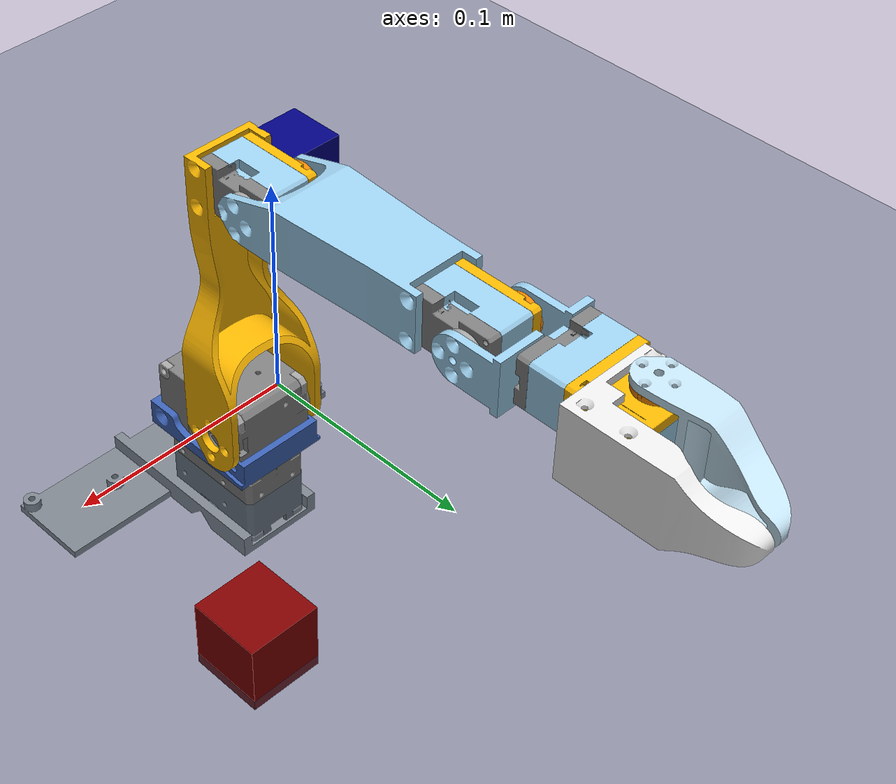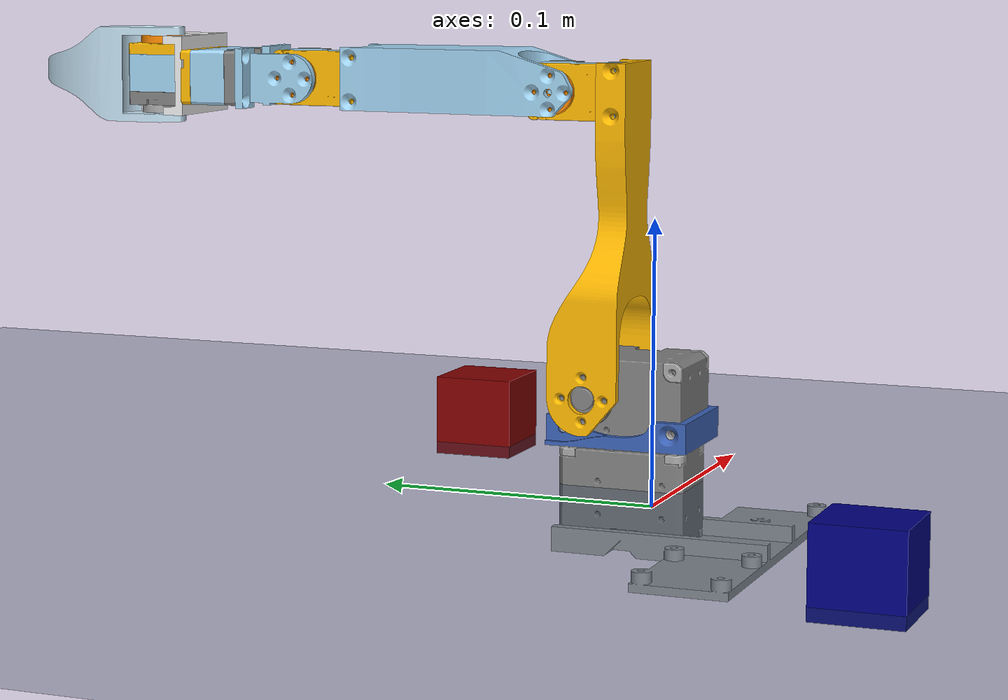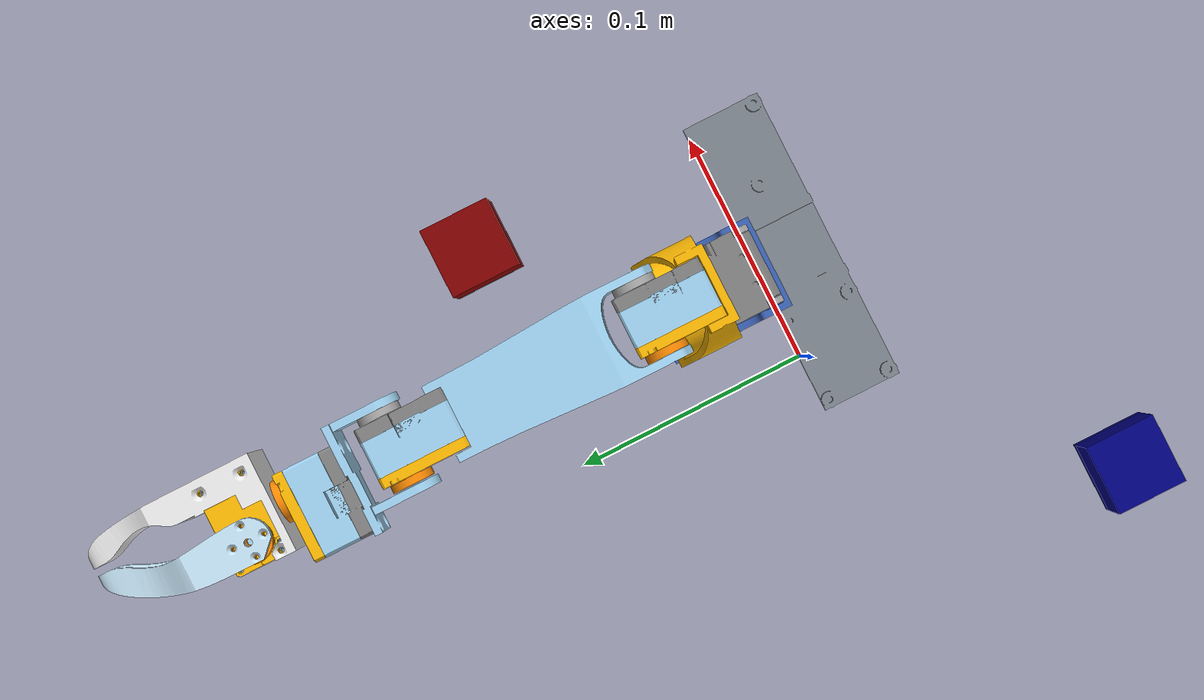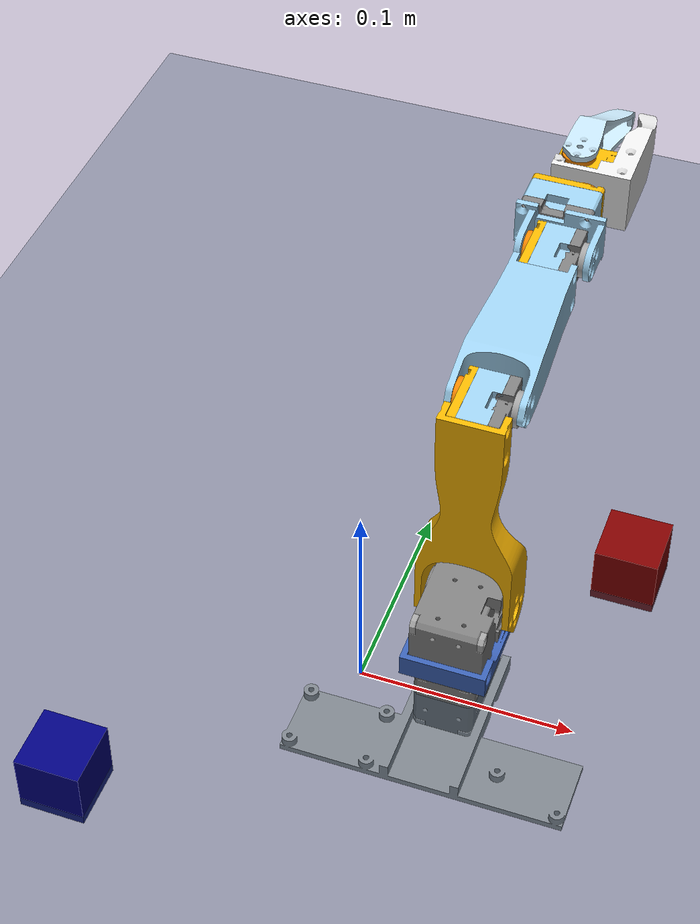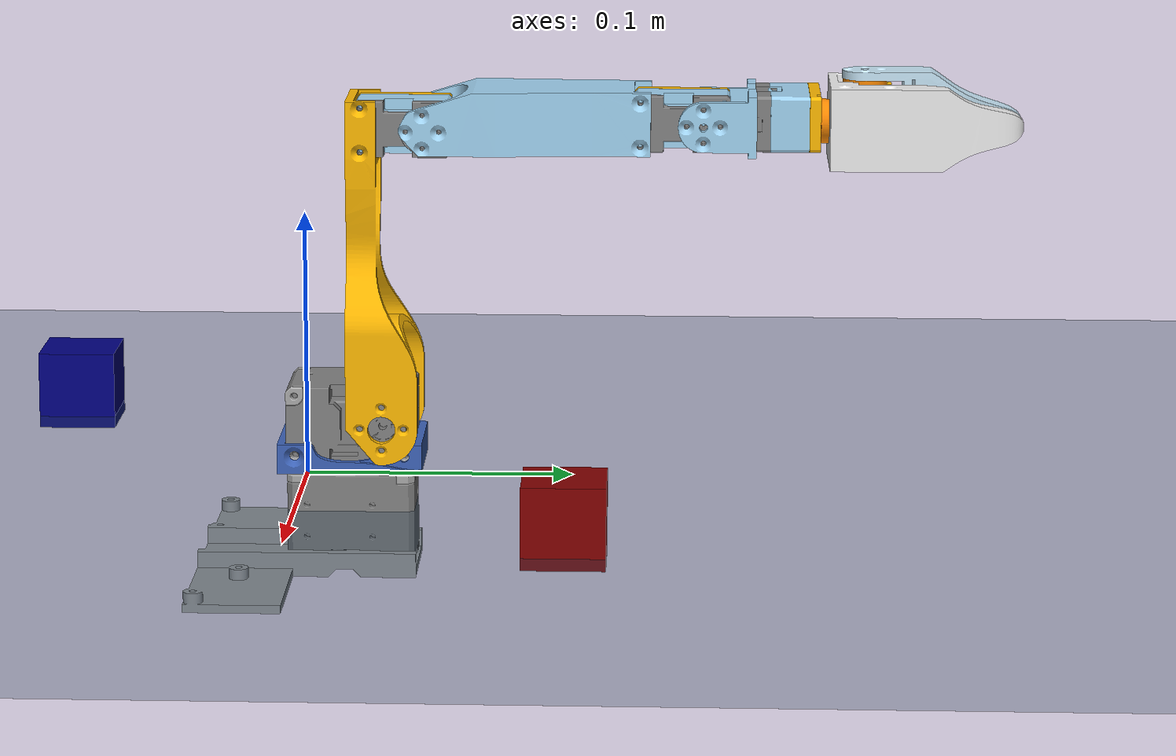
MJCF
<mujoco model="bd1 scene">
	<option timestep="0.005"/>

	<compiler angle="radian" autolimits="true"/>

	<asset>
		<mesh name="base" file="base.stl"/>
		<mesh name="dc11_a01_spacer_dummy" file="dc11_a01_spacer_dummy.stl"/>
		<mesh name="dc11_a01_dummy" file="dc11_a01_dummy.stl"/>
		<mesh name="rotation_connector" file="rotation_connector.stl"/>
		<mesh name="arm_connector" file="arm_connector.stl"/>
		<mesh name="dc15_a01_horn_idle2_dummy" file="dc15_a01_horn_idle2_dummy.stl"/>
		<mesh name="dc15_a01_case_m_dummy" file="dc15_a01_case_m_dummy.stl"/>
		<mesh name="dc15_a01_case_f_dummy" file="dc15_a01_case_f_dummy.stl"/>
		<mesh name="dc15_a01_horn_dummy" file="dc15_a01_horn_dummy.stl"/>
		<mesh name="dc15_a01_case_b_dummy" file="dc15_a01_case_b_dummy.stl"/>
		<mesh name="connector" file="connector.stl"/>
		<mesh name="shoulder_rotation" file="shoulder_rotation.stl"/>
		<mesh name="static_side" file="static_side.stl"/>
		<mesh name="moving_side" file="moving_side.stl"/>
		<texture type="skybox" builtin="gradient" rgb1="0.3 0.5 0.7" rgb2="0 0 0" width="512" height="3072" />
		<texture type="2d" name="groundplane" builtin="checker" mark="edge" rgb1="0.2 0.3 0.4" rgb2="0.1 0.2 0.3" markrgb="0.8 0.8 0.8" width="300" height="300" />
		<material name="groundplane" texture="groundplane" texuniform="true" texrepeat="5 5" reflectance="0.2" />
	</asset>

	<visual>
		<headlight diffuse="0.6 0.6 0.6" ambient="0.3 0.3 0.3" specular="0 0 0" />
		<rgba haze="0.15 0.25 0.35 1" />
		<global azimuth="150" elevation="-20" offheight="640" />
	</visual>

	<worldbody>
		<light pos="0 0 3" dir="0 0 -1" directional="false" />
		<body name="floor">
			<geom pos="0 0 0" name="floor" size="0 0 .125" type="plane" material="groundplane" conaffinity="1" contype="1" />
		</body>

		<body name="cube_red" pos="0.1 0.1 0.01">
			<freejoint name="cube_red"/>
			<inertial pos="0 0 0" mass="0.1" diaginertia="0.00001125 0.00001125 0.00001125"/>
			<geom friction="0.5" condim="3" pos="0 0 0" size="0.015 0.015 0.015" type="box" name="cube_red" rgba="0.5 0 0 1" priority="1"/>
		</body>

		<body name="cube_blue" pos="-0.1 -0.1 0.01">
			<freejoint name="cube_blue"/>
			<inertial pos="0 0 0" mass="0.1" diaginertia="0.00001125 0.00001125 0.00001125"/>
			<geom friction="0.5" condim="3" pos="0 0 0" size="0.015 0.015 0.015" type="box" name="cube_blue" rgba="0 0 0.5 1" priority="1"/>
		</body>

		<camera name="camera_front" pos="0.049 0.888 0.317" xyaxes="-0.998 0.056 -0.000 -0.019 -0.335 0.942"/>
		<camera name="camera_top" pos="0 0 1" euler="0 0 0" mode="fixed"/>
		<camera name="camera_vizu" pos="-0.1 0.6 0.3" quat="-0.15 -0.1 0.6 1"/>

		<geom pos="0.0401555 -0.0353754 -0.0242427" type="mesh" rgba="0.647059 0.647059 0.647059 1" mesh="base"/>
		<geom pos="0.0511555 0.0406246 0.0099573" quat="0 0 0 1" type="mesh" rgba="0.647059 0.647059 0.647059 1" mesh="dc11_a01_spacer_dummy"/>
		<geom pos="0.0291555 0.000624643 0.0099573" quat="0 0 0 1" type="mesh" rgba="0.647059 0.647059 0.647059 1" mesh="dc11_a01_spacer_dummy"/>
		<geom pos="0.0511555 0.000624643 -0.0184427" quat="0 0 1 0" type="mesh" rgba="0.647059 0.647059 0.647059 1" mesh="dc11_a01_spacer_dummy"/>
		<geom pos="0.0401555 0.0326246 -0.0042427" type="mesh" rgba="0.498039 0.498039 0.498039 1" mesh="dc11_a01_dummy"/>
		<geom pos="0.0291555 0.000624643 -0.0184427" quat="0 0.707107 0.707107 0" type="mesh" rgba="0.647059 0.647059 0.647059 1" mesh="dc11_a01_spacer_dummy"/>
		<geom pos="0.0291555 0.0406246 0.0099573" quat="0.707107 0 0 -0.707107" type="mesh" rgba="0.647059 0.647059 0.647059 1" mesh="dc11_a01_spacer_dummy"/>
		<geom pos="0.0511555 0.0406246 -0.0184427" quat="0 0.707107 -0.707107 0" type="mesh" rgba="0.647059 0.647059 0.647059 1" mesh="dc11_a01_spacer_dummy"/>
		<geom pos="0.0291555 0.0406246 -0.0184427" quat="0 -1 0 0" type="mesh" rgba="0.647059 0.647059 0.647059 1" mesh="dc11_a01_spacer_dummy"/>
		<geom pos="0.0511555 0.000624643 0.0099573" quat="0.707107 0 0 0.707107" type="mesh" rgba="0.647059 0.647059 0.647059 1" mesh="dc11_a01_spacer_dummy"/>

		<body name="pitch1_assembly" pos="0.0401555 0.0326246 0.0166573">

			<inertial pos="-0.000767103 -0.0121505 0.0134241" quat="0.498429 0.53272 -0.473938 0.493113" mass="0.0606831" diaginertia="1.86261e-05 1.72746e-05 1.11693e-05"/>
			<joint name="shoulder_pan_joint" pos="0 0 0" axis="0 0 1" range="-3.14159 3.14159" damping="0.1" actuatorfrcrange="-0.5 0.5" actuatorfrclimited="true"/>
			<geom pos="0 0 -0.0209" type="mesh" rgba="0.231373 0.380392 0.705882 1" mesh="rotation_connector"/>
			<geom pos="-0.014 0.008 0.0264" quat="0 -0.707107 0 0.707107" type="mesh" rgba="0.647059 0.647059 0.647059 1" mesh="dc11_a01_spacer_dummy"/>
			<geom pos="-0.014 -0.032 0.0044" quat="0 -0.707107 0 0.707107" type="mesh" rgba="0.647059 0.647059 0.647059 1" mesh="dc11_a01_spacer_dummy"/>
			<geom pos="0.0144 -0.032 0.0264" quat="0.707107 0 0.707107 0" type="mesh" rgba="0.647059 0.647059 0.647059 1" mesh="dc11_a01_spacer_dummy"/>
			<geom pos="0.0002 0 0.0154" quat="0.707107 0 -0.707107 0" type="mesh" rgba="0.498039 0.498039 0.498039 1" mesh="dc11_a01_dummy"/>
			<geom pos="0.0144 -0.032 0.0044" quat="0.5 0.5 0.5 0.5" type="mesh" rgba="0.647059 0.647059 0.647059 1" mesh="dc11_a01_spacer_dummy"/>
			<geom pos="-0.014 0.008 0.0044" quat="0.5 0.5 -0.5 -0.5" type="mesh" rgba="0.647059 0.647059 0.647059 1" mesh="dc11_a01_spacer_dummy"/>
			<geom pos="0.0144 0.008 0.0264" quat="0.5 -0.5 0.5 -0.5" type="mesh" rgba="0.647059 0.647059 0.647059 1" mesh="dc11_a01_spacer_dummy"/>
			<geom pos="0.0144 0.008 0.0044" quat="0 0.707107 0 0.707107" type="mesh" rgba="0.647059 0.647059 0.647059 1" mesh="dc11_a01_spacer_dummy"/>
			<geom pos="-0.014 -0.032 0.0264" quat="0.5 -0.5 -0.5 0.5" type="mesh" rgba="0.647059 0.647059 0.647059 1" mesh="dc11_a01_spacer_dummy"/>

			<body name="pitch2_assembly" pos="-0.0188 0 0.0154" quat="0 0.707107 0 0.707107">

				<inertial pos="0.0766242 -0.00031229 0.0187402" quat="0.52596 0.513053 0.489778 0.469319" mass="0.0432446" diaginertia="7.21796e-05 7.03107e-05 1.07533e-05"/>
				<joint name="shoulder_lift_joint" pos="0 0 0" axis="0 0 1" range="-1.5708 1.22173" damping="0.1" actuatorfrcrange="-0.5 0.5" actuatorfrclimited="true"/>
				<geom pos="0 0 0.019" quat="0.5 -0.5 -0.5 -0.5" type="mesh" rgba="0.980392 0.713726 0.00392157 1" mesh="arm_connector"/>
				<geom pos="0.1083 -0.0148 0.03035" quat="1 0 0 0" type="mesh" rgba="0.647059 0.647059 0.647059 1" mesh="dc15_a01_horn_idle2_dummy"/>
				<geom pos="0.1083 -0.0148 0.01075" quat="0 -1 0 0" type="mesh" rgba="0.615686 0.811765 0.929412 1" mesh="dc15_a01_case_m_dummy"/>
				<geom pos="0.1083 -0.0148 0.01075" quat="0 -1 0 0" type="mesh" rgba="0.980392 0.713726 0.00392157 1" mesh="dc15_a01_case_f_dummy"/>
				<geom pos="0.1083 -0.0148 0.00715" quat="0 0 0.707107 -0.707107" type="mesh" rgba="0.972549 0.529412 0.00392157 1" mesh="dc15_a01_horn_dummy"/>
				<geom pos="0.1083 -0.0148 0.03025" quat="0 -1 0 0" type="mesh" rgba="0.498039 0.498039 0.498039 1" mesh="dc15_a01_case_b_dummy"/>

				<body name="pitch3_assembly" pos="0.1083 -0.0148 0.00425" quat="0.707107 0 0 0.707107">
					<inertial pos="-0.0551014 -0.00287792 0.0144813" quat="0.500323 0.499209 0.499868 0.5006" mass="0.0788335" diaginertia="6.80912e-05 6.45748e-05 9.84479e-06"/>
					<joint name="elbow_flex_joint" pos="0 0 0" axis="0 0 1" range="-1.48353 1.74533"  damping="0.1" actuatorfrcrange="-0.5 0.5" actuatorfrclimited="true"/>
					<geom pos="-0.00863031 0.00847376 0.0145" quat="0.5 0.5 0.5 -0.5" type="mesh" rgba="0.615686 0.811765 0.929412 1" mesh="connector"/>
					<geom pos="-0.100476 -0.00269986 0.02635" quat="0.707107 0 0 -0.707107" type="mesh" rgba="0.647059 0.647059 0.647059 1" mesh="dc15_a01_horn_idle2_dummy"/>
					<geom pos="-0.100476 -0.00269986 0.00675" quat="0 -0.707107 0.707107 0" type="mesh" rgba="0.615686 0.811765 0.929412 1" mesh="dc15_a01_case_m_dummy"/>
					<geom pos="-0.100476 -0.00269986 0.00675" quat="0 -0.707107 0.707107 0" type="mesh" rgba="0.980392 0.713726 0.00392157 1" mesh="dc15_a01_case_f_dummy"/>
					<geom pos="-0.100476 -0.00269986 0.00315" quat="0.5 -0.5 -0.5 0.5" type="mesh" rgba="0.972549 0.529412 0.00392157 1" mesh="dc15_a01_horn_dummy"/>
					<geom pos="-0.100476 -0.00269986 0.02625" quat="0 -0.707107 0.707107 0" type="mesh" rgba="0.498039 0.498039 0.498039 1" mesh="dc15_a01_case_b_dummy"/>

					<body name="effector_roll_assembly" pos="-0.100476 -0.00269986 0.02925" quat="0 -0.707107 -0.707107 0">
						<inertial pos="-1.65017e-05 -0.02659 0.0195388" quat="0.936813 0.349829 -0.00055331 -0.000300569" mass="0.0240506" diaginertia="6.03208e-06 4.12894e-06 3.3522e-06"/>
						<joint name="wrist_flex_joint" pos="0 0 0" axis="0 0 1" range="-1.91986 1.91986"  damping="0.1" actuatorfrcrange="-0.5 0.5" actuatorfrclimited="true"/>
						<geom pos="-0.0109998 -0.0190002 0.039" quat="0.707107 -0.707107 0 0" type="mesh" rgba="0.615686 0.811765 0.929412 1" mesh="shoulder_rotation"/>
						<geom pos="-7.44154e-06 -0.0385002 0.0133967" quat="0 0 0.707107 -0.707107" type="mesh" rgba="0.615686 0.811765 0.929412 1" mesh="dc15_a01_case_m_dummy"/>
						<geom pos="-7.44154e-06 -0.0385002 0.0133967" quat="0 0 0.707107 -0.707107" type="mesh" rgba="0.980392 0.713726 0.00392157 1" mesh="dc15_a01_case_f_dummy"/>
						<geom pos="-7.44154e-06 -0.0421002 0.0133967" quat="0 1 0 0" type="mesh" rgba="0.972549 0.529412 0.00392157 1" mesh="dc15_a01_horn_dummy"/>
						<geom pos="-7.44154e-06 -0.0190002 0.0133967" quat="0 0 0.707107 -0.707107" type="mesh" rgba="0.498039 0.498039 0.498039 1" mesh="dc15_a01_case_b_dummy"/>

						<body name="gripper_assembly" pos="-7.44154e-06 -0.0450002 0.0133967" quat="0.5 -0.5 -0.5 -0.5">
							<inertial pos="-0.00548595 -0.000433143 -0.0190793" quat="0.700194 0.164851 0.167361 0.674197" mass="0.0360627" diaginertia="1.3261e-05 1.231e-05 5.3532e-06"/>
							<joint name="wrist_roll_joint" pos="0 0 0" axis="0 0 1" range="-2.96706 2.96706"  damping="0.1" actuatorfrcrange="-0.5 0.5" actuatorfrclimited="true"/>
							<geom pos="-0.00075 -0.01475 -0.02" quat="0.707107 -0.707107 0 0" type="mesh" rgba="0.917647 0.917647 0.917647 1" mesh="static_side"/>
							<geom pos="0.00755 0.01135 -0.013" quat="0.5 -0.5 0.5 0.5" type="mesh" rgba="0.647059 0.647059 0.647059 1" mesh="dc15_a01_horn_idle2_dummy"/>
							<geom pos="0.00755 -0.00825 -0.013" quat="0.5 0.5 0.5 -0.5" type="mesh" rgba="0.615686 0.811765 0.929412 1" mesh="dc15_a01_case_m_dummy"/>
							<geom pos="0.00755 -0.00825 -0.013" quat="0.5 0.5 0.5 -0.5" type="mesh" rgba="0.980392 0.713726 0.00392157 1" mesh="dc15_a01_case_f_dummy"/>
							<geom pos="0.00755 -0.01185 -0.013" quat="0 -0.707107 0 -0.707107" type="mesh" rgba="0.972549 0.529412 0.00392157 1" mesh="dc15_a01_horn_dummy"/>
							<geom pos="0.00755 0.01125 -0.013" quat="0.5 0.5 0.5 -0.5" type="mesh" rgba="0.498039 0.498039 0.498039 1" mesh="dc15_a01_case_b_dummy"/>

							<body name="moving_side" pos="0.00755 -0.01475 -0.013" quat="0.707107 -0.707107 0 0">
								<inertial pos="-0.000395599 0.022415 0.0145636" quat="0.722353 0.689129 0.0389102 0.0423547" mass="0.0089856" diaginertia="3.28451e-06 2.24898e-06 1.41539e-06"/>
								<joint name="gripper_joint" pos="0 0 0" axis="0 0 1" range="-1.74533 0.0523599"  damping="0.1" actuatorfrcrange="-0.5 0.5" actuatorfrclimited="true"/>
								<geom pos="-0.00838199 -0.000256591 -0.003" type="mesh" rgba="0.768627 0.886275 0.952941 1" mesh="moving_side"/>
							</body>
						</body>
					</body>
				</body>
			</body>
		</body>
	</worldbody>

	<actuator>
		<position joint="shoulder_pan_joint" ctrlrange="-3.14159 3.14159" ctrllimited="true" kp="20" />
		<position joint="shoulder_lift_joint" ctrlrange="-1.5708 1.22173" ctrllimited="true" kp="20" />
		<position joint="elbow_flex_joint" ctrlrange="-1.48353 1.74533" ctrllimited="true" kp="20" />
		<position joint="wrist_flex_joint" ctrlrange="-1.91986 1.91986" ctrllimited="true" kp="20" />
		<position joint="wrist_roll_joint" ctrlrange="-2.96706 2.96706" ctrllimited="true" kp="20" />
		<position joint="gripper_joint" ctrlrange="-1.74533 0.0523599" ctrllimited="true" kp="20" />
	</actuator>
</mujoco>
